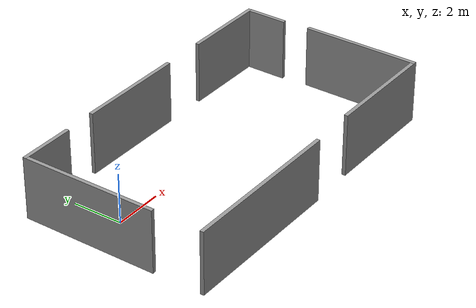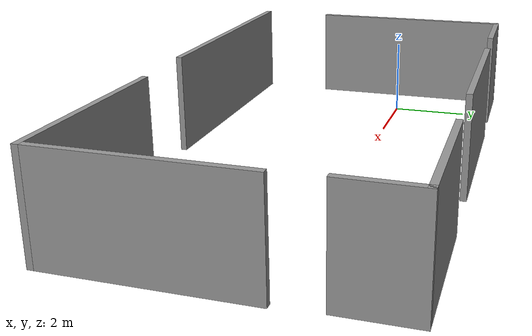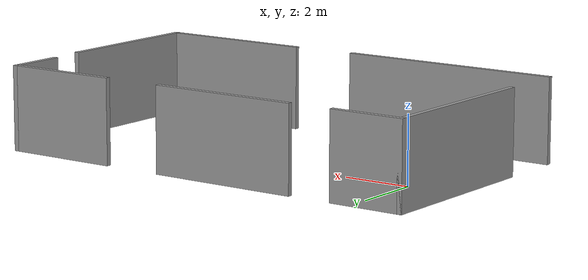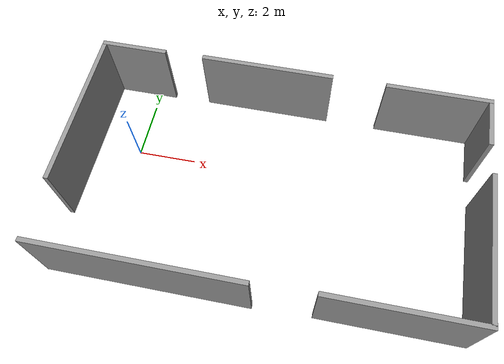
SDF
<?xml version='1.0'?>
<sdf version='1.7'>
  <model name='Cuarto'>
    <pose>5.06854 -0.980172 0 0 -0 0</pose>
    <link name='Wall_1'>
      <collision name='Wall_1_Collision'>
        <geometry>
          <box>
            <size>5.5 0.15 2.5</size>
          </box>
        </geometry>
        <pose>0 0 1.25 0 -0 0</pose>
      </collision>
      <visual name='Wall_1_Visual'>
        <pose>0 0 1.25 0 -0 0</pose>
        <geometry>
          <box>
            <size>5.5 0.15 2.5</size>
          </box>
        </geometry>
        <material>
          <script>
            <uri>file://media/materials/scripts/gazebo.material</uri>
            <name>Gazebo/Grey</name>
          </script>
          <ambient>1 1 1 1</ambient>
        </material>
        <meta>
          <layer>0</layer>
        </meta>
      </visual>
      <pose>-6.63801 1.0167 0 0 -0 1.5708</pose>
    </link>
    <link name='Wall_10'>
      <collision name='Wall_10_Collision'>
        <geometry>
          <box>
            <size>4.75 0.15 2.5</size>
          </box>
        </geometry>
        <pose>0 0 1.25 0 -0 0</pose>
      </collision>
      <visual name='Wall_10_Visual'>
        <pose>0 0 1.25 0 -0 0</pose>
        <geometry>
          <box>
            <size>4.75 0.15 2.5</size>
          </box>
        </geometry>
        <material>
          <script>
            <uri>file://media/materials/scripts/gazebo.material</uri>
            <name>Gazebo/Grey</name>
          </script>
          <ambient>1 1 1 1</ambient>
        </material>
        <meta>
          <layer>0</layer>
        </meta>
      </visual>
      <pose>4.33801 -3.64239 0 0 -0 3.14159</pose>
    </link>
    <link name='Wall_12'>
      <collision name='Wall_12_Collision'>
        <geometry>
          <box>
            <size>6.75 0.15 2.5</size>
          </box>
        </geometry>
        <pose>0 0 1.25 0 -0 0</pose>
      </collision>
      <visual name='Wall_12_Visual'>
        <pose>0 0 1.25 0 -0 0</pose>
        <geometry>
          <box>
            <size>6.75 0.15 2.5</size>
          </box>
        </geometry>
        <material>
          <script>
            <uri>file://media/materials/scripts/gazebo.material</uri>
            <name>Gazebo/Grey</name>
          </script>
          <ambient>1 1 1 1</ambient>
        </material>
        <meta>
          <layer>0</layer>
        </meta>
      </visual>
      <pose>-3.31204 -3.72403 0 0 -0 3.14159</pose>
    </link>
    <link name='Wall_2'>
      <collision name='Wall_2_Collision'>
        <geometry>
          <box>
            <size>2.25 0.15 2.5</size>
          </box>
        </geometry>
        <pose>0 0 1.25 0 -0 0</pose>
      </collision>
      <visual name='Wall_2_Visual'>
        <pose>0 0 1.25 0 -0 0</pose>
        <geometry>
          <box>
            <size>2.25 0.15 2.5</size>
          </box>
        </geometry>
        <material>
          <script>
            <uri>file://media/materials/scripts/gazebo.material</uri>
            <name>Gazebo/Grey</name>
          </script>
          <ambient>1 1 1 1</ambient>
        </material>
        <meta>
          <layer>0</layer>
        </meta>
      </visual>
      <pose>-5.58801 3.6917 0 0 -0 0</pose>
    </link>
    <link name='Wall_4'>
      <collision name='Wall_4_Collision'>
        <geometry>
          <box>
            <size>4.5 0.15 2.5</size>
          </box>
        </geometry>
        <pose>0 0 1.25 0 -0 0</pose>
      </collision>
      <visual name='Wall_4_Visual'>
        <pose>0 0 1.25 0 -0 0</pose>
        <geometry>
          <box>
            <size>4.5 0.15 2.5</size>
          </box>
        </geometry>
        <material>
          <script>
            <uri>file://media/materials/scripts/gazebo.material</uri>
            <name>Gazebo/Grey</name>
          </script>
          <ambient>1 1 1 1</ambient>
        </material>
        <meta>
          <layer>0</layer>
        </meta>
      </visual>
      <pose>-0.92266 3.72403 0 0 -0 0</pose>
    </link>
    <link name='Wall_6'>
      <collision name='Wall_6_Collision'>
        <geometry>
          <box>
            <size>3.5 0.15 2.5</size>
          </box>
        </geometry>
        <pose>0 0 1.25 0 -0 0</pose>
      </collision>
      <visual name='Wall_6_Visual'>
        <pose>0 0 1.25 0 -0 0</pose>
        <geometry>
          <box>
            <size>3.5 0.15 2.5</size>
          </box>
        </geometry>
        <material>
          <script>
            <uri>file://media/materials/scripts/gazebo.material</uri>
            <name>Gazebo/Grey</name>
          </script>
          <ambient>1 1 1 1</ambient>
        </material>
        <meta>
          <layer>0</layer>
        </meta>
      </visual>
      <pose>4.85499 3.72403 0 0 -0 0</pose>
    </link>
    <link name='Wall_7'>
      <collision name='Wall_7_Collision'>
        <geometry>
          <box>
            <size>1.75 0.15 2.5</size>
          </box>
        </geometry>
        <pose>0 0 1.25 0 -0 0</pose>
      </collision>
      <visual name='Wall_7_Visual'>
        <pose>0 0 1.25 0 -0 0</pose>
        <geometry>
          <box>
            <size>1.75 0.15 2.5</size>
          </box>
        </geometry>
        <material>
          <script>
            <uri>file://media/materials/scripts/gazebo.material</uri>
            <name>Gazebo/Grey</name>
          </script>
          <ambient>1 1 1 1</ambient>
        </material>
        <meta>
          <layer>0</layer>
        </meta>
      </visual>
      <pose>6.52999 2.92403 0 0 -0 -1.5708</pose>
    </link>
    <link name='Wall_9'>
      <collision name='Wall_9_Collision'>
        <geometry>
          <box>
            <size>4.75 0.15 2.5</size>
          </box>
        </geometry>
        <pose>0 0 1.25 0 -0 0</pose>
      </collision>
      <visual name='Wall_9_Visual'>
        <pose>0 0 1.25 0 -0 0</pose>
        <geometry>
          <box>
            <size>4.75 0.15 2.5</size>
          </box>
        </geometry>
        <material>
          <script>
            <uri>file://media/materials/scripts/gazebo.material</uri>
            <name>Gazebo/Grey</name>
          </script>
          <ambient>1 1 1 1</ambient>
        </material>
        <meta>
          <layer>0</layer>
        </meta>
      </visual>
      <pose>6.63801 -1.34239 0 0 -0 -1.5708</pose>
    </link>
    <static>1</static>
  </model>
</sdf>
